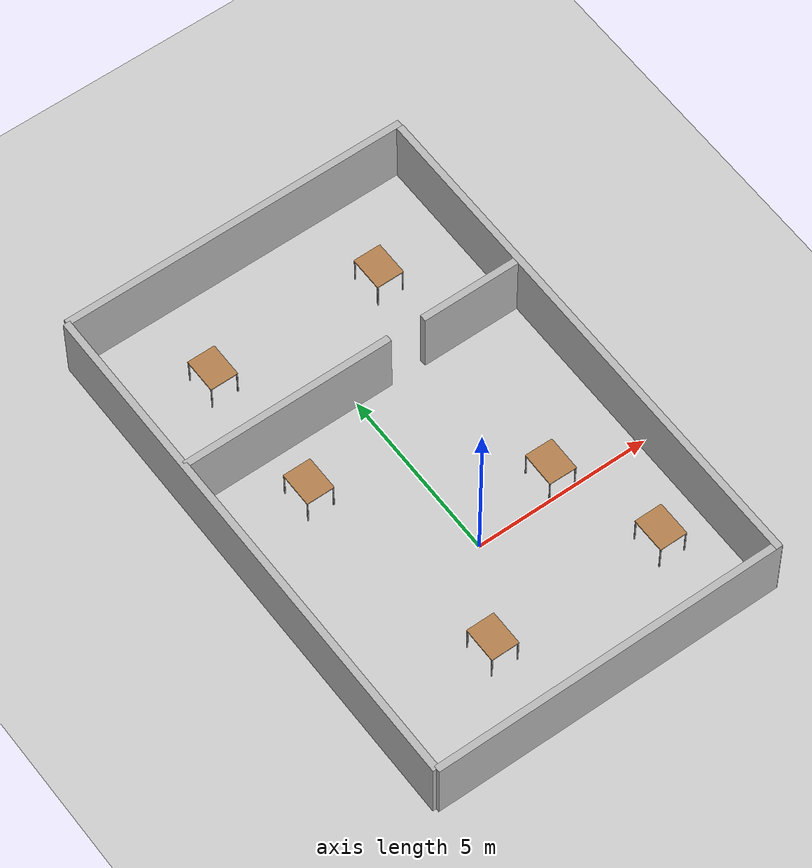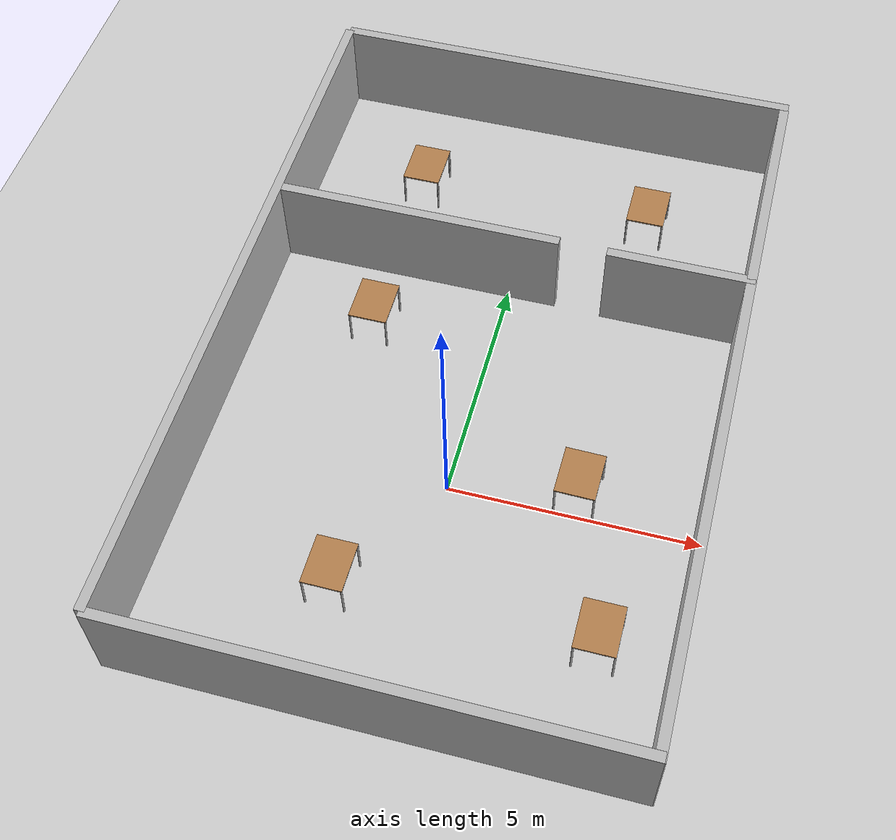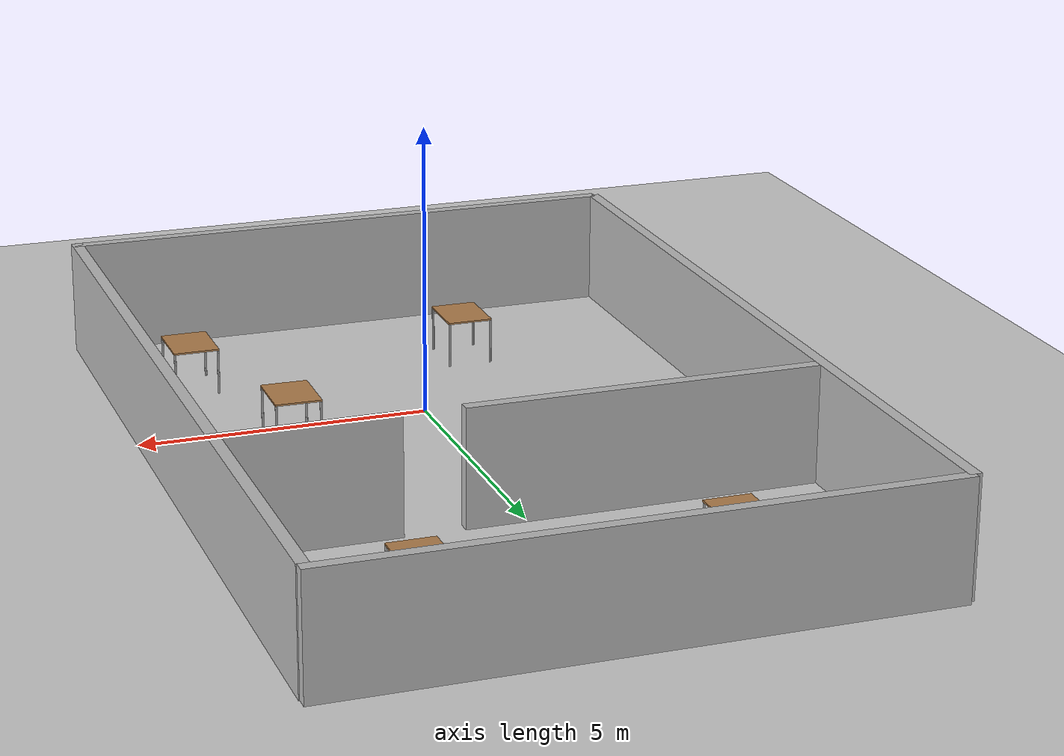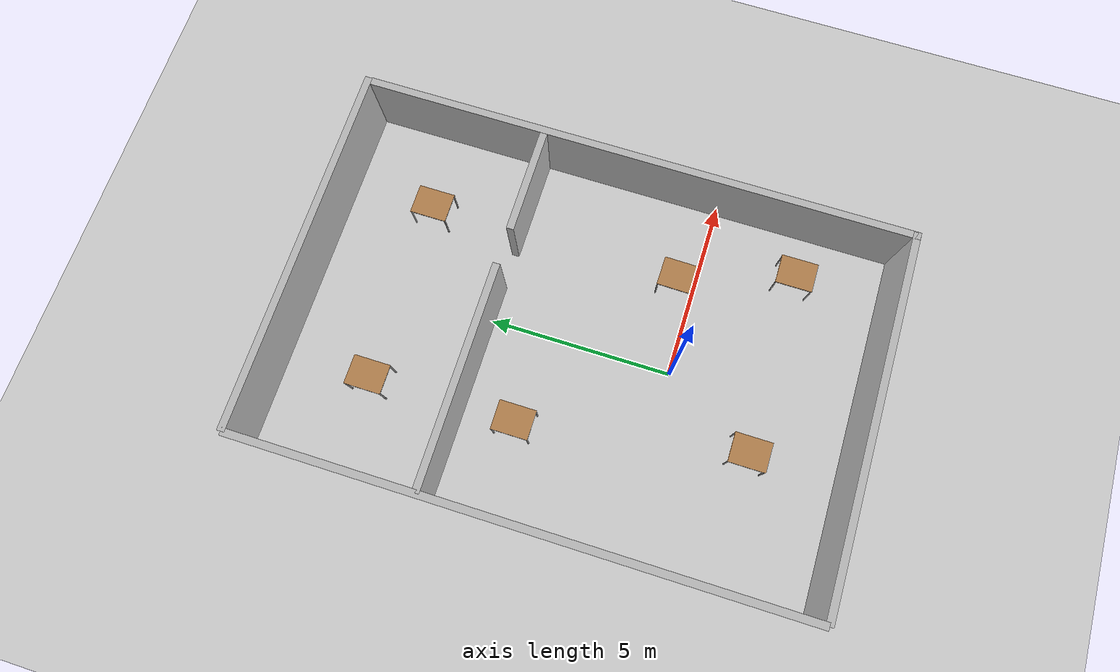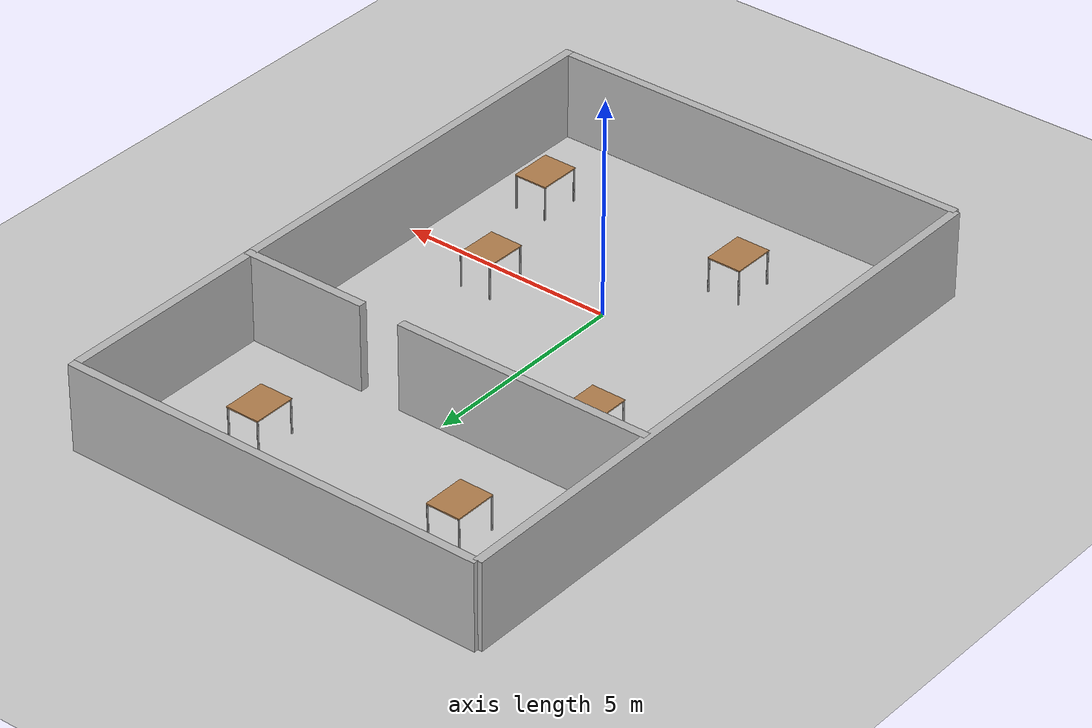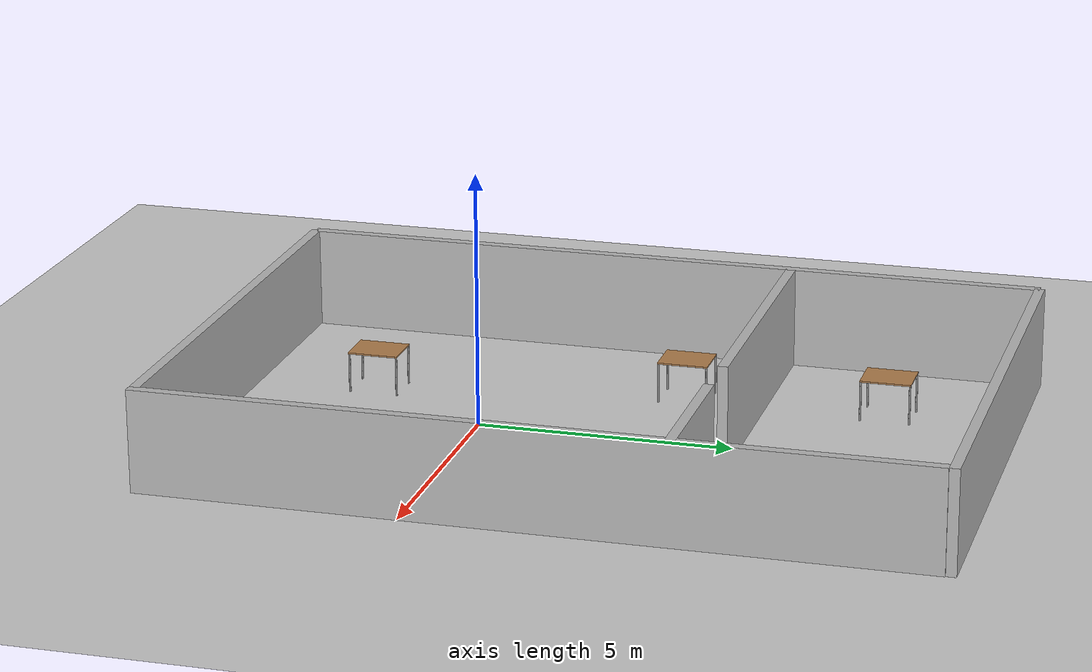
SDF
<sdf version="1.6">
 <world name="default">
  <physics name="default_physics" default="0" type="ode">
   <ode>
    <solver>
     <type>quick</type>
     <iters>20</iters>
     <sor>1</sor>
     <use_dynamic_moi_rescaling>0</use_dynamic_moi_rescaling>
    </solver>
    <constraints>
     <cfm>0</cfm>
     <erp>0.2</erp>
     <contact_max_correcting_vel>100</contact_max_correcting_vel>
     <contact_surface_layer>0</contact_surface_layer>
    </constraints>
   </ode>
   <real_time_update_rate>1000</real_time_update_rate>
   <max_step_size>0.001</max_step_size>
   <real_time_factor>1</real_time_factor>
  </physics>
  <light name="sun" type="directional">
   <pose>0 0 10 0 -0 0</pose>
   <diffuse>0.8 0.8 0.8 1</diffuse>
   <specular>0.2 0.2 0.2 1</specular>
   <attenuation>
    <range>1000</range>
    <constant>0.9</constant>
    <linear>0.01</linear>
    <quadratic>0.001</quadratic>
   </attenuation>
   <direction>-0.5 0.1 -0.9</direction>
  </light>
  <model name="ground_plane">
   <static>1</static>
   <link name="link">
    <collision name="collision">
     <geometry><plane><normal>0 0 1</normal><size>100 100</size></plane></geometry>
     <surface>
      <contact><collide_bitmask>65535</collide_bitmask></contact>
      <friction><ode><mu>100</mu><mu2>50</mu2></ode></friction>
     </surface>
    </collision>
    <visual name="visual">
     <cast_shadows>0</cast_shadows>
     <geometry><plane><normal>0 0 1</normal><size>100 100</size></plane></geometry>
     <material>
      <script><uri>file://media/materials/scripts/gazebo.material</uri><name>Gazebo/Grey</name></script>
     </material>
    </visual>
   </link>
  </model>
  <model name="wall_1_model">
   <pose>0 -5 1 0 -0 0</pose>
   <static>1</static>
   <link name="wall_1_body">
    <inertial>
     <mass>1</mass>
     <inertia><ixx>1</ixx><ixy>0</ixy><ixz>0</ixz><iyy>1</iyy><iyz>0</iyz><izz>1</izz></inertia>
    </inertial>
    <collision name="collision"><geometry><box><size>10 0.2 2</size></box></geometry></collision>
    <visual name="visual"><geometry><box><size>10 0.2 2</size></box></geometry></visual>
   </link>
  </model>
  <model name="wall_2_model">
   <pose>0 10 1 0 -0 0</pose>
   <static>1</static>
   <link name="wall_2_body">
    <inertial>
     <mass>1</mass>
     <inertia><ixx>1</ixx><ixy>0</ixy><ixz>0</ixz><iyy>1</iyy><iyz>0</iyz><izz>1</izz></inertia>
    </inertial>
    <collision name="collision"><geometry><box><size>10 0.2 2</size></box></geometry></collision>
    <visual name="visual"><geometry><box><size>10 0.2 2</size></box></geometry></visual>
   </link>
  </model>
  <model name="wall_3_model">
   <pose>-5 2.5 1 0 -0 0</pose>
   <static>1</static>
   <link name="wall_3_body">
    <inertial>
     <mass>1</mass>
     <inertia><ixx>1</ixx><ixy>0</ixy><ixz>0</ixz><iyy>1</iyy><iyz>0</iyz><izz>1</izz></inertia>
    </inertial>
    <collision name="collision"><geometry><box><size>0.2 15 2</size></box></geometry></collision>
    <visual name="visual"><geometry><box><size>0.2 15 2</size></box></geometry></visual>
   </link>
  </model>
  <model name="wall_4_model">
   <pose>4.91819 2.40195 1 0 -0 0</pose>
   <static>1</static>
   <link name="wall_4_body">
    <inertial>
     <mass>1</mass>
     <inertia><ixx>1</ixx><ixy>0</ixy><ixz>0</ixz><iyy>1</iyy><iyz>0</iyz><izz>1</izz></inertia>
    </inertial>
    <collision name="collision"><geometry><box><size>0.2 15 2</size></box></geometry></collision>
    <visual name="visual"><geometry><box><size>0.2 15 2</size></box></geometry></visual>
   </link>
  </model>
  <model name="wall_5_model">
   <pose>-1.98503 5.02651 1 0 -0 0</pose>
   <static>1</static>
   <link name="wall_5_body">
    <inertial>
     <mass>1</mass>
     <inertia><ixx>1</ixx><ixy>0</ixy><ixz>0</ixz><iyy>1</iyy><iyz>0</iyz><izz>1</izz></inertia>
    </inertial>
    <collision name="collision"><geometry><box><size>6 0.2 2</size></box></geometry></collision>
    <visual name="visual"><geometry><box><size>6 0.2 2</size></box></geometry></visual>
   </link>
  </model>
  <model name="wall_6_model">
   <pose>3.5 5 1 0 -0 0</pose>
   <static>1</static>
   <link name="wall_6_body">
    <inertial>
     <mass>1</mass>
     <inertia><ixx>1</ixx><ixy>0</ixy><ixz>0</ixz><iyy>1</iyy><iyz>0</iyz><izz>1</izz></inertia>
    </inertial>
    <collision name="collision"><geometry><box><size>3 0.2 2</size></box></geometry></collision>
    <visual name="visual"><geometry><box><size>3 0.2 2</size></box></geometry></visual>
   </link>
  </model>
  <light name="male03light" type="point">
   <pose>3.6 0.53 1.6 0 -0 0</pose>
   <diffuse>0.5 0.5 0.5 1</diffuse>
   <specular>0.1 0.1 0.1 1</specular>
   <attenuation>
    <range>1</range>
    <linear>0.01</linear>
    <constant>0.3</constant>
    <quadratic>0</quadratic>
   </attenuation>
   <direction>0 0 -1</direction>
   <spot><inner_angle>0.6</inner_angle><outer_angle>0.8</outer_angle><falloff>1.2</falloff></spot>
   <cast_shadows>0</cast_shadows>
  </light>
  <light name="female03light" type="point">
   <pose>-3 6.2 1.5 0 -0 0</pose>
   <diffuse>0.5 0.5 0.5 1</diffuse>
   <specular>0.1 0.1 0.1 1</specular>
   <attenuation>
    <range>1</range>
    <linear>0.01</linear>
    <constant>0.3</constant>
    <quadratic>0</quadratic>
   </attenuation>
   <direction>0 0 -1</direction>
   <spot><inner_angle>0.6</inner_angle><outer_angle>0.8</outer_angle><falloff>1.2</falloff></spot>
   <cast_shadows>0</cast_shadows>
  </light>
  <light name="female02bislight" type="point">
   <pose>3.8 6.7 1.5 0 -0 0</pose>
   <diffuse>0.5 0.5 0.5 1</diffuse>
   <specular>0.1 0.1 0.1 1</specular>
   <attenuation>
    <range>1</range>
    <linear>0.01</linear>
    <constant>0.3</constant>
    <quadratic>0</quadratic>
   </attenuation>
   <direction>0 0 -1</direction>
   <spot><inner_angle>0.6</inner_angle><outer_angle>0.8</outer_angle><falloff>1.2</falloff></spot>
   <cast_shadows>0</cast_shadows>
  </light>
  <light name="male03bislight" type="point">
   <pose>-2.9 3.7 1.5 0 -0 0</pose>
   <diffuse>0.5 0.5 0.5 1</diffuse>
   <specular>0.1 0.1 0.1 1</specular>
   <attenuation>
    <range>1</range>
    <linear>0.01</linear>
    <constant>0.3</constant>
    <quadratic>0</quadratic>
   </attenuation>
   <direction>0 0 -1</direction>
   <spot><inner_angle>0.6</inner_angle><outer_angle>0.8</outer_angle><falloff>1.2</falloff></spot>
   <cast_shadows>0</cast_shadows>
  </light>
  <gravity>0 0 -9.81</gravity>
  <magnetic_field>6e-06 2.3e-05 -4.2e-05</magnetic_field>
  <atmosphere type="adiabatic"/>
  <scene><ambient>0.4 0.4 0.4 1</ambient><background>0.7 0.7 0.7 1</background><shadows>1</shadows></scene>
  <audio><device>default</device></audio>
  <spherical_coordinates>
   <surface_model>EARTH_WGS84</surface_model>
   <latitude_deg>0</latitude_deg>
   <longitude_deg>0</longitude_deg>
   <elevation>0</elevation>
   <heading_deg>0</heading_deg>
  </spherical_coordinates>
  <model name="table">
   <static>1</static>
   <link name="link">
    <collision name="surface">
     <pose>0 0 0.8 0 -0 0</pose>
     <geometry><box><size>1 0.8 0.03</size></box></geometry>
    </collision>
    <visual name="visual1">
     <pose>0 0 0.8 0 -0 0</pose>
     <geometry><box><size>1 0.8 0.03</size></box></geometry>
     <material>
      <script><uri>file://media/materials/scripts/gazebo.material</uri><name>Gazebo/Wood</name></script>
     </material>
    </visual>
    <collision name="front_left_leg">
     <pose>0.48 0.38 0.4 0 -0 0</pose>
     <geometry><cylinder><radius>0.02</radius><length>0.8</length></cylinder></geometry>
    </collision>
    <visual name="front_left_leg">
     <pose>0.48 0.38 0.4 0 -0 0</pose>
     <geometry><cylinder><radius>0.02</radius><length>0.8</length></cylinder></geometry>
     <material>
      <script><uri>file://media/materials/scripts/gazebo.material</uri><name>Gazebo/Grey</name></script>
     </material>
    </visual>
    <collision name="front_right_leg">
     <pose>0.48 -0.38 0.4 0 -0 0</pose>
     <geometry><cylinder><radius>0.02</radius><length>0.8</length></cylinder></geometry>
    </collision>
    <visual name="front_right_leg">
     <pose>0.48 -0.38 0.4 0 -0 0</pose>
     <geometry><cylinder><radius>0.02</radius><length>0.8</length></cylinder></geometry>
     <material>
      <script><uri>file://media/materials/scripts/gazebo.material</uri><name>Gazebo/Grey</name></script>
     </material>
    </visual>
    <collision name="back_right_leg">
     <pose>-0.48 -0.38 0.4 0 -0 0</pose>
     <geometry><cylinder><radius>0.02</radius><length>0.8</length></cylinder></geometry>
    </collision>
    <visual name="back_right_leg">
     <pose>-0.48 -0.38 0.4 0 -0 0</pose>
     <geometry><cylinder><radius>0.02</radius><length>0.8</length></cylinder></geometry>
     <material>
      <script><uri>file://media/materials/scripts/gazebo.material</uri><name>Gazebo/Grey</name></script>
     </material>
    </visual>
    <collision name="back_left_leg">
     <pose>-0.48 0.38 0.4 0 -0 0</pose>
     <geometry><cylinder><radius>0.02</radius><length>0.8</length></cylinder></geometry>
    </collision>
    <visual name="back_left_leg">
     <pose>-0.48 0.38 0.4 0 -0 0</pose>
     <geometry><cylinder><radius>0.02</radius><length>0.8</length></cylinder></geometry>
     <material>
      <script><uri>file://media/materials/scripts/gazebo.material</uri><name>Gazebo/Grey</name></script>
     </material>
    </visual>
    <velocity_decay><linear>0</linear><angular>0</angular></velocity_decay>
   </link>
   <pose>3.5 -2.5 0 0 -0 1.5707</pose>
  </model>
  <model name="table_0">
   <static>1</static>
   <link name="link">
    <collision name="surface">
     <pose>0 0 0.8 0 -0 0</pose>
     <geometry><box><size>1 0.8 0.03</size></box></geometry>
    </collision>
    <visual name="visual1">
     <pose>0 0 0.8 0 -0 0</pose>
     <geometry><box><size>1 0.8 0.03</size></box></geometry>
     <material>
      <script><uri>file://media/materials/scripts/gazebo.material</uri><name>Gazebo/Wood</name></script>
     </material>
    </visual>
    <collision name="front_left_leg">
     <pose>0.48 0.38 0.4 0 -0 0</pose>
     <geometry><cylinder><radius>0.02</radius><length>0.8</length></cylinder></geometry>
    </collision>
    <visual name="front_left_leg">
     <pose>0.48 0.38 0.4 0 -0 0</pose>
     <geometry><cylinder><radius>0.02</radius><length>0.8</length></cylinder></geometry>
     <material>
      <script><uri>file://media/materials/scripts/gazebo.material</uri><name>Gazebo/Grey</name></script>
     </material>
    </visual>
    <collision name="front_right_leg">
     <pose>0.48 -0.38 0.4 0 -0 0</pose>
     <geometry><cylinder><radius>0.02</radius><length>0.8</length></cylinder></geometry>
    </collision>
    <visual name="front_right_leg">
     <pose>0.48 -0.38 0.4 0 -0 0</pose>
     <geometry><cylinder><radius>0.02</radius><length>0.8</length></cylinder></geometry>
     <material>
      <script><uri>file://media/materials/scripts/gazebo.material</uri><name>Gazebo/Grey</name></script>
     </material>
    </visual>
    <collision name="back_right_leg">
     <pose>-0.48 -0.38 0.4 0 -0 0</pose>
     <geometry><cylinder><radius>0.02</radius><length>0.8</length></cylinder></geometry>
    </collision>
    <visual name="back_right_leg">
     <pose>-0.48 -0.38 0.4 0 -0 0</pose>
     <geometry><cylinder><radius>0.02</radius><length>0.8</length></cylinder></geometry>
     <material>
      <script><uri>file://media/materials/scripts/gazebo.material</uri><name>Gazebo/Grey</name></script>
     </material>
    </visual>
    <collision name="back_left_leg">
     <pose>-0.48 0.38 0.4 0 -0 0</pose>
     <geometry><cylinder><radius>0.02</radius><length>0.8</length></cylinder></geometry>
    </collision>
    <visual name="back_left_leg">
     <pose>-0.48 0.38 0.4 0 -0 0</pose>
     <geometry><cylinder><radius>0.02</radius><length>0.8</length></cylinder></geometry>
     <material>
      <script><uri>file://media/materials/scripts/gazebo.material</uri><name>Gazebo/Grey</name></script>
     </material>
    </visual>
    <velocity_decay><linear>0</linear><angular>0</angular></velocity_decay>
   </link>
   <pose>-1.5 -2.5 0 0 0 -1.57335</pose>
  </model>
  <model name="table_1">
   <static>1</static>
   <link name="link">
    <collision name="surface">
     <pose>0 0 0.8 0 -0 0</pose>
     <geometry><box><size>1 0.8 0.03</size></box></geometry>
    </collision>
    <visual name="visual1">
     <pose>0 0 0.8 0 -0 0</pose>
     <geometry><box><size>1 0.8 0.03</size></box></geometry>
     <material>
      <script><uri>file://media/materials/scripts/gazebo.material</uri><name>Gazebo/Wood</name></script>
     </material>
    </visual>
    <collision name="front_left_leg">
     <pose>0.48 0.38 0.4 0 -0 0</pose>
     <geometry><cylinder><radius>0.02</radius><length>0.8</length></cylinder></geometry>
    </collision>
    <visual name="front_left_leg">
     <pose>0.48 0.38 0.4 0 -0 0</pose>
     <geometry><cylinder><radius>0.02</radius><length>0.8</length></cylinder></geometry>
     <material>
      <script><uri>file://media/materials/scripts/gazebo.material</uri><name>Gazebo/Grey</name></script>
     </material>
    </visual>
    <collision name="front_right_leg">
     <pose>0.48 -0.38 0.4 0 -0 0</pose>
     <geometry><cylinder><radius>0.02</radius><length>0.8</length></cylinder></geometry>
    </collision>
    <visual name="front_right_leg">
     <pose>0.48 -0.38 0.4 0 -0 0</pose>
     <geometry><cylinder><radius>0.02</radius><length>0.8</length></cylinder></geometry>
     <material>
      <script><uri>file://media/materials/scripts/gazebo.material</uri><name>Gazebo/Grey</name></script>
     </material>
    </visual>
    <collision name="back_right_leg">
     <pose>-0.48 -0.38 0.4 0 -0 0</pose>
     <geometry><cylinder><radius>0.02</radius><length>0.8</length></cylinder></geometry>
    </collision>
    <visual name="back_right_leg">
     <pose>-0.48 -0.38 0.4 0 -0 0</pose>
     <geometry><cylinder><radius>0.02</radius><length>0.8</length></cylinder></geometry>
     <material>
      <script><uri>file://media/materials/scripts/gazebo.material</uri><name>Gazebo/Grey</name></script>
     </material>
    </visual>
    <collision name="back_left_leg">
     <pose>-0.48 0.38 0.4 0 -0 0</pose>
     <geometry><cylinder><radius>0.02</radius><length>0.8</length></cylinder></geometry>
    </collision>
    <visual name="back_left_leg">
     <pose>-0.48 0.38 0.4 0 -0 0</pose>
     <geometry><cylinder><radius>0.02</radius><length>0.8</length></cylinder></geometry>
     <material>
      <script><uri>file://media/materials/scripts/gazebo.material</uri><name>Gazebo/Grey</name></script>
     </material>
    </visual>
    <velocity_decay><linear>0</linear><angular>0</angular></velocity_decay>
   </link>
   <pose>2.5 0.5 0 0 0 -1.58621</pose>
  </model>
  <model name="table_3">
   <static>1</static>
   <link name="link">
    <collision name="surface">
     <pose>0 0 0.8 0 -0 0</pose>
     <geometry><box><size>1 0.8 0.03</size></box></geometry>
    </collision>
    <visual name="visual1">
     <pose>0 0 0.8 0 -0 0</pose>
     <geometry><box><size>1 0.8 0.03</size></box></geometry>
     <material>
      <script><uri>file://media/materials/scripts/gazebo.material</uri><name>Gazebo/Wood</name></script>
     </material>
    </visual>
    <collision name="front_left_leg">
     <pose>0.48 0.38 0.4 0 -0 0</pose>
     <geometry><cylinder><radius>0.02</radius><length>0.8</length></cylinder></geometry>
    </collision>
    <visual name="front_left_leg">
     <pose>0.48 0.38 0.4 0 -0 0</pose>
     <geometry><cylinder><radius>0.02</radius><length>0.8</length></cylinder></geometry>
     <material>
      <script><uri>file://media/materials/scripts/gazebo.material</uri><name>Gazebo/Grey</name></script>
     </material>
    </visual>
    <collision name="front_right_leg">
     <pose>0.48 -0.38 0.4 0 -0 0</pose>
     <geometry><cylinder><radius>0.02</radius><length>0.8</length></cylinder></geometry>
    </collision>
    <visual name="front_right_leg">
     <pose>0.48 -0.38 0.4 0 -0 0</pose>
     <geometry><cylinder><radius>0.02</radius><length>0.8</length></cylinder></geometry>
     <material>
      <script><uri>file://media/materials/scripts/gazebo.material</uri><name>Gazebo/Grey</name></script>
     </material>
    </visual>
    <collision name="back_right_leg">
     <pose>-0.48 -0.38 0.4 0 -0 0</pose>
     <geometry><cylinder><radius>0.02</radius><length>0.8</length></cylinder></geometry>
    </collision>
    <visual name="back_right_leg">
     <pose>-0.48 -0.38 0.4 0 -0 0</pose>
     <geometry><cylinder><radius>0.02</radius><length>0.8</length></cylinder></geometry>
     <material>
      <script><uri>file://media/materials/scripts/gazebo.material</uri><name>Gazebo/Grey</name></script>
     </material>
    </visual>
    <collision name="back_left_leg">
     <pose>-0.48 0.38 0.4 0 -0 0</pose>
     <geometry><cylinder><radius>0.02</radius><length>0.8</length></cylinder></geometry>
    </collision>
    <visual name="back_left_leg">
     <pose>-0.48 0.38 0.4 0 -0 0</pose>
     <geometry><cylinder><radius>0.02</radius><length>0.8</length></cylinder></geometry>
     <material>
      <script><uri>file://media/materials/scripts/gazebo.material</uri><name>Gazebo/Grey</name></script>
     </material>
    </visual>
    <velocity_decay><linear>0</linear><angular>0</angular></velocity_decay>
   </link>
   <pose>-2.5 7.5 0 0 -0 1.5707</pose>
  </model>
  <model name="table_4">
   <static>1</static>
   <link name="link">
    <collision name="surface">
     <pose>0 0 0.8 0 -0 0</pose>
     <geometry><box><size>1 0.8 0.03</size></box></geometry>
    </collision>
    <visual name="visual1">
     <pose>0 0 0.8 0 -0 0</pose>
     <geometry><box><size>1 0.8 0.03</size></box></geometry>
     <material>
      <script><uri>file://media/materials/scripts/gazebo.material</uri><name>Gazebo/Wood</name></script>
     </material>
    </visual>
    <collision name="front_left_leg">
     <pose>0.48 0.38 0.4 0 -0 0</pose>
     <geometry><cylinder><radius>0.02</radius><length>0.8</length></cylinder></geometry>
    </collision>
    <visual name="front_left_leg">
     <pose>0.48 0.38 0.4 0 -0 0</pose>
     <geometry><cylinder><radius>0.02</radius><length>0.8</length></cylinder></geometry>
     <material>
      <script><uri>file://media/materials/scripts/gazebo.material</uri><name>Gazebo/Grey</name></script>
     </material>
    </visual>
    <collision name="front_right_leg">
     <pose>0.48 -0.38 0.4 0 -0 0</pose>
     <geometry><cylinder><radius>0.02</radius><length>0.8</length></cylinder></geometry>
    </collision>
    <visual name="front_right_leg">
     <pose>0.48 -0.38 0.4 0 -0 0</pose>
     <geometry><cylinder><radius>0.02</radius><length>0.8</length></cylinder></geometry>
     <material>
      <script><uri>file://media/materials/scripts/gazebo.material</uri><name>Gazebo/Grey</name></script>
     </material>
    </visual>
    <collision name="back_right_leg">
     <pose>-0.48 -0.38 0.4 0 -0 0</pose>
     <geometry><cylinder><radius>0.02</radius><length>0.8</length></cylinder></geometry>
    </collision>
    <visual name="back_right_leg">
     <pose>-0.48 -0.38 0.4 0 -0 0</pose>
     <geometry><cylinder><radius>0.02</radius><length>0.8</length></cylinder></geometry>
     <material>
      <script><uri>file://media/materials/scripts/gazebo.material</uri><name>Gazebo/Grey</name></script>
     </material>
    </visual>
    <collision name="back_left_leg">
     <pose>-0.48 0.38 0.4 0 -0 0</pose>
     <geometry><cylinder><radius>0.02</radius><length>0.8</length></cylinder></geometry>
    </collision>
    <visual name="back_left_leg">
     <pose>-0.48 0.38 0.4 0 -0 0</pose>
     <geometry><cylinder><radius>0.02</radius><length>0.8</length></cylinder></geometry>
     <material>
      <script><uri>file://media/materials/scripts/gazebo.material</uri><name>Gazebo/Grey</name></script>
     </material>
    </visual>
    <velocity_decay><linear>0</linear><angular>0</angular></velocity_decay>
   </link>
   <pose>-2.5 3.5 0 0 -0 1.5707</pose>
  </model>
  <model name="table_2">
   <static>1</static>
   <link name="link">
    <collision name="surface">
     <pose>0 0 0.8 0 -0 0</pose>
     <geometry><box><size>1 0.8 0.03</size></box></geometry>
    </collision>
    <visual name="visual1">
     <pose>0 0 0.8 0 -0 0</pose>
     <geometry><box><size>1 0.8 0.03</size></box></geometry>
     <material>
      <script><uri>file://media/materials/scripts/gazebo.material</uri><name>Gazebo/Wood</name></script>
     </material>
    </visual>
    <collision name="front_left_leg">
     <pose>0.48 0.38 0.4 0 -0 0</pose>
     <geometry><cylinder><radius>0.02</radius><length>0.8</length></cylinder></geometry>
    </collision>
    <visual name="front_left_leg">
     <pose>0.48 0.38 0.4 0 -0 0</pose>
     <geometry><cylinder><radius>0.02</radius><length>0.8</length></cylinder></geometry>
     <material>
      <script><uri>file://media/materials/scripts/gazebo.material</uri><name>Gazebo/Grey</name></script>
     </material>
    </visual>
    <collision name="front_right_leg">
     <pose>0.48 -0.38 0.4 0 -0 0</pose>
     <geometry><cylinder><radius>0.02</radius><length>0.8</length></cylinder></geometry>
    </collision>
    <visual name="front_right_leg">
     <pose>0.48 -0.38 0.4 0 -0 0</pose>
     <geometry><cylinder><radius>0.02</radius><length>0.8</length></cylinder></geometry>
     <material>
      <script><uri>file://media/materials/scripts/gazebo.material</uri><name>Gazebo/Grey</name></script>
     </material>
    </visual>
    <collision name="back_right_leg">
     <pose>-0.48 -0.38 0.4 0 -0 0</pose>
     <geometry><cylinder><radius>0.02</radius><length>0.8</length></cylinder></geometry>
    </collision>
    <visual name="back_right_leg">
     <pose>-0.48 -0.38 0.4 0 -0 0</pose>
     <geometry><cylinder><radius>0.02</radius><length>0.8</length></cylinder></geometry>
     <material>
      <script><uri>file://media/materials/scripts/gazebo.material</uri><name>Gazebo/Grey</name></script>
     </material>
    </visual>
    <collision name="back_left_leg">
     <pose>-0.48 0.38 0.4 0 -0 0</pose>
     <geometry><cylinder><radius>0.02</radius><length>0.8</length></cylinder></geometry>
    </collision>
    <visual name="back_left_leg">
     <pose>-0.48 0.38 0.4 0 -0 0</pose>
     <geometry><cylinder><radius>0.02</radius><length>0.8</length></cylinder></geometry>
     <material>
      <script><uri>file://media/materials/scripts/gazebo.material</uri><name>Gazebo/Grey</name></script>
     </material>
    </visual>
    <velocity_decay><linear>0</linear><angular>0</angular></velocity_decay>
   </link>
   <pose>2.5 7.5 0 0 -0 1.5707</pose>
  </model>
  <light name="user_spot_light_0" type="spot">
   <pose>-0.603318 -2.51052 1 0 -0 0</pose>
   <diffuse>0.5 0.5 0.5 1</diffuse>
   <specular>0.1 0.1 0.1 1</specular>
   <direction>0 0 -1</direction>
   <attenuation>
    <range>1</range>
    <constant>0.5</constant>
    <linear>0.01</linear>
    <quadratic>0.001</quadratic>
   </attenuation>
   <cast_shadows>0</cast_shadows>
   <spot><inner_angle>0.3</inner_angle><outer_angle>0.5</outer_angle><falloff>1</falloff></spot>
  </light>
 </world>
</sdf>
